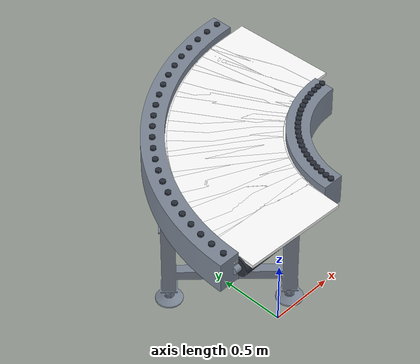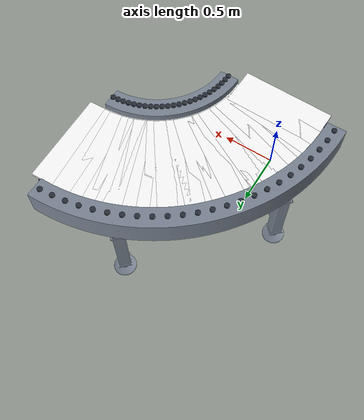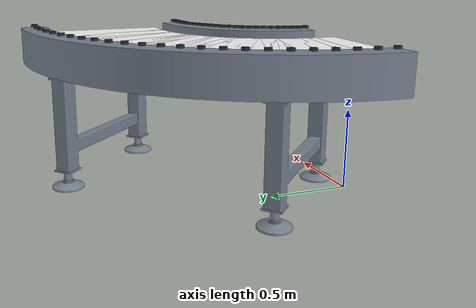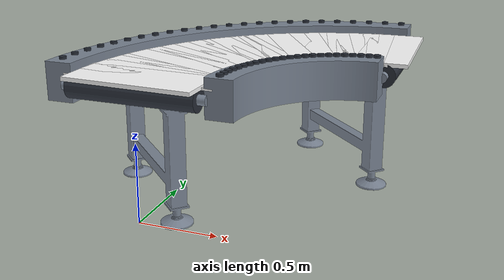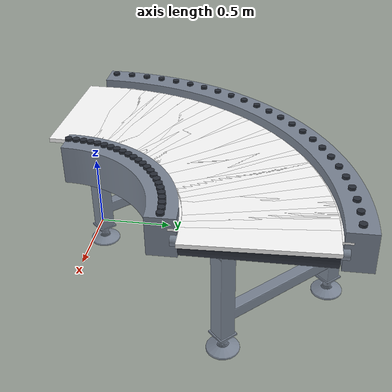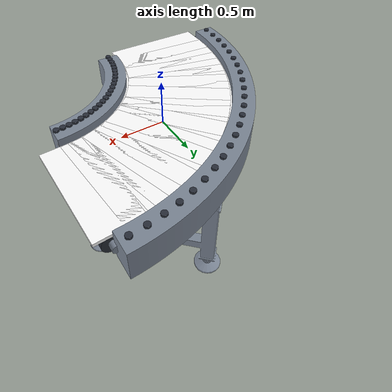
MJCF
<mujoco model="conveyor_curve_right">
  <!-- Generated by generate.mjs. Edit the generator rather than this file. -->
  <compiler angle="radian" meshdir="meshes" texturedir="textures"/>
  <option timestep="0.002"/>

  <asset>
    <material name="conveyor_frame_mat" rgba="0.48 0.52 0.58 1" metallic="0.72" roughness="0.28"/>
    <material name="conveyor_hardware_mat" rgba="0.16 0.18 0.22 1" metallic="0.82" roughness="0.24"/>
    <texture name="belt_color" type="2d" file="rubber-color.png"/>
    <texture name="belt_normal" type="2d" file="rubber-normal.png"/>
    <texture name="belt_roughness" type="2d" file="rubber-roughness.png"/>
    <material name="conveyor_belt_mat" rgba="1 1 1 1" metallic="0" roughness="1">
      <layer role="rgb" texture="belt_color"/>
      <layer role="normal" texture="belt_normal"/>
      <layer role="roughness" texture="belt_roughness"/>
    </material>
    <mesh name="conveyor_curve_inner_rail_visual" file="curve-right-inner-rail.obj" inertia="shell"/>
    <mesh name="conveyor_curve_outer_rail_visual" file="curve-right-outer-rail.obj" inertia="shell"/>
    <mesh name="conveyor_curve_belt_underlay_visual" file="curve-right-belt-underlay.obj" inertia="shell"/>
    <mesh name="conveyor_curve_belt_tile" file="belt-curve-tile.obj" inertia="shell"/>
    <mesh name="conveyor_curve_belt_end_tile" file="belt-curve-end-tile.obj" inertia="shell"/>
    <mesh name="conveyor_curve_support_visual"
          file="visual_3.obj" inertia="shell"/>
  </asset>

  <worldbody>
    <body name="conveyor_curve_right" pos="0 0 0">
      <!-- The incoming connection is centered at the origin and points along local +Y. -->
      <geom name="conveyor_curve_belt_underlay_visual" type="mesh" mesh="conveyor_curve_belt_underlay_visual"
            material="conveyor_belt_mat" group="1" contype="0" conaffinity="0" mass="0"/>
      <geom name="conveyor_curve_inner_rail_visual" type="mesh" mesh="conveyor_curve_inner_rail_visual"
            material="conveyor_frame_mat" group="1" contype="0" conaffinity="0" mass="0"/>
      <geom name="conveyor_curve_outer_rail_visual" type="mesh" mesh="conveyor_curve_outer_rail_visual"
            material="conveyor_frame_mat" group="1" contype="0" conaffinity="0" mass="0"/>
      <!-- Connection frames use local +Y as belt travel for drag-to-attach placement. -->
      <site name="attachment_site" pos="0 0 0.88" xyaxes="1 0 0 0 1 0" size="0.035" group="4"/>
      <site name="attachment_site_outlet" pos="1.25 1.25 0.88"
            xyaxes="0 -1 0 1 0 0" size="0.035" group="4"/>

      <!-- Driven roller and end caps make each curve interface read as a real conveyor transition. -->
      <geom name="conveyor_curve_inlet_roller" type="cylinder" fromto="-0.405 0 0.81 0.405 0 0.81" size="0.075"
            material="conveyor_hardware_mat" group="1" contype="0" conaffinity="0" mass="0"/>
      <geom name="conveyor_curve_inlet_roller_caps" type="cylinder" fromto="-0.455 0 0.81 0.455 0 0.81" size="0.031"
            material="conveyor_frame_mat" group="1" contype="0" conaffinity="0" mass="0"/>
      <!-- Driven roller and end caps make each curve interface read as a real conveyor transition. -->
      <geom name="conveyor_curve_outlet_roller" type="cylinder" fromto="1.25 1.6370036 0.81 1.25 0.8270036 0.81" size="0.075"
            material="conveyor_hardware_mat" group="1" contype="0" conaffinity="0" mass="0"/>
      <geom name="conveyor_curve_outlet_roller_caps" type="cylinder" fromto="1.25 1.6870036 0.81 1.25 0.7770036 0.81" size="0.031"
            material="conveyor_frame_mat" group="1" contype="0" conaffinity="0" mass="0"/>

      <!-- Reuse the straight conveyor's finished, adjustable-leg support assembly. -->
      <geom name="conveyor_curve_support_visual" type="mesh" mesh="conveyor_curve_support_visual"
            pos="0.3788419 0.8711581 0" quat="0.923879533 0 0 -0.382683432" material="conveyor_frame_mat"
            group="1" contype="0" conaffinity="0" mass="0"/>

      <!-- Fasteners along both guard rails give the curve the same manufactured detail as the straight modules. -->
      <geom name="conveyor_curve_inner_fastener_0" type="cylinder" pos="0.523385647 0.023786891 0.955" size="0.022 0.008"
            material="conveyor_hardware_mat" group="1" contype="0" conaffinity="0" mass="0"/>
      <geom name="conveyor_curve_outer_fastener_0" type="cylinder" pos="-0.486073587 0.056833165 0.955" size="0.022 0.008"
            material="conveyor_hardware_mat" group="1" contype="0" conaffinity="0" mass="0"/>
      <geom name="conveyor_curve_inner_fastener_1" type="cylinder" pos="0.526497121 0.071258814 0.955" size="0.022 0.008"
            material="conveyor_hardware_mat" group="1" contype="0" conaffinity="0" mass="0"/>
      <geom name="conveyor_curve_outer_fastener_1" type="cylinder" pos="-0.478639453 0.170256126 0.955" size="0.022 0.008"
            material="conveyor_hardware_mat" group="1" contype="0" conaffinity="0" mass="0"/>
      <geom name="conveyor_curve_inner_fastener_2" type="cylinder" pos="0.532706746 0.118425596 0.955" size="0.022 0.008"
            material="conveyor_hardware_mat" group="1" contype="0" conaffinity="0" mass="0"/>
      <geom name="conveyor_curve_outer_fastener_2" type="cylinder" pos="-0.46380302 0.282950024 0.955" size="0.022 0.008"
            material="conveyor_hardware_mat" group="1" contype="0" conaffinity="0" mass="0"/>
      <geom name="conveyor_curve_inner_fastener_3" type="cylinder" pos="0.54198793 0.165085261 0.955" size="0.022 0.008"
            material="conveyor_hardware_mat" group="1" contype="0" conaffinity="0" mass="0"/>
      <geom name="conveyor_curve_outer_fastener_3" type="cylinder" pos="-0.441627819 0.394432286 0.955" size="0.022 0.008"
            material="conveyor_hardware_mat" group="1" contype="0" conaffinity="0" mass="0"/>
      <geom name="conveyor_curve_inner_fastener_4" type="cylinder" pos="0.554300931 0.211038005 0.955" size="0.022 0.008"
            material="conveyor_hardware_mat" group="1" contype="0" conaffinity="0" mass="0"/>
      <geom name="conveyor_curve_outer_fastener_4" type="cylinder" pos="-0.412208808 0.504225529 0.955" size="0.022 0.008"
            material="conveyor_hardware_mat" group="1" contype="0" conaffinity="0" mass="0"/>
      <geom name="conveyor_curve_inner_fastener_5" type="cylinder" pos="0.569593022 0.256087053 0.955" size="0.022 0.008"
            material="conveyor_hardware_mat" group="1" contype="0" conaffinity="0" mass="0"/>
      <geom name="conveyor_curve_outer_fastener_5" type="cylinder" pos="-0.375671964 0.611859601 0.955" size="0.022 0.008"
            material="conveyor_hardware_mat" group="1" contype="0" conaffinity="0" mass="0"/>
      <geom name="conveyor_curve_inner_fastener_6" type="cylinder" pos="0.58779872 0.300039496 0.955" size="0.022 0.008"
            material="conveyor_hardware_mat" group="1" contype="0" conaffinity="0" mass="0"/>
      <geom name="conveyor_curve_outer_fastener_6" type="cylinder" pos="-0.332173743 0.716873597 0.955" size="0.022 0.008"
            material="conveyor_hardware_mat" group="1" contype="0" conaffinity="0" mass="0"/>
      <geom name="conveyor_curve_inner_fastener_7" type="cylinder" pos="0.608840066 0.342707125 0.955" size="0.022 0.008"
            material="conveyor_hardware_mat" group="1" contype="0" conaffinity="0" mass="0"/>
      <geom name="conveyor_curve_outer_fastener_7" type="cylinder" pos="-0.281900411 0.818817829 0.955" size="0.022 0.008"
            material="conveyor_hardware_mat" group="1" contype="0" conaffinity="0" mass="0"/>
      <geom name="conveyor_curve_inner_fastener_8" type="cylinder" pos="0.632626957 0.383907228 0.955" size="0.022 0.008"
            material="conveyor_hardware_mat" group="1" contype="0" conaffinity="0" mass="0"/>
      <geom name="conveyor_curve_outer_fastener_8" type="cylinder" pos="-0.225067246 0.917255758 0.955" size="0.022 0.008"
            material="conveyor_hardware_mat" group="1" contype="0" conaffinity="0" mass="0"/>
      <geom name="conveyor_curve_inner_fastener_9" type="cylinder" pos="0.659057534 0.423463383 0.955" size="0.022 0.008"
            material="conveyor_hardware_mat" group="1" contype="0" conaffinity="0" mass="0"/>
      <geom name="conveyor_curve_outer_fastener_9" type="cylinder" pos="-0.161917617 1.011765856 0.955" size="0.022 0.008"
            material="conveyor_hardware_mat" group="1" contype="0" conaffinity="0" mass="0"/>
      <geom name="conveyor_curve_inner_fastener_10" type="cylinder" pos="0.688018618 0.461206201 0.955" size="0.022 0.008"
            material="conveyor_hardware_mat" group="1" contype="0" conaffinity="0" mass="0"/>
      <geom name="conveyor_curve_outer_fastener_10" type="cylinder" pos="-0.09272194 1.101943418 0.955" size="0.022 0.008"
            material="conveyor_hardware_mat" group="1" contype="0" conaffinity="0" mass="0"/>
      <geom name="conveyor_curve_inner_fastener_11" type="cylinder" pos="0.719386192 0.496974065 0.955" size="0.022 0.008"
            material="conveyor_hardware_mat" group="1" contype="0" conaffinity="0" mass="0"/>
      <geom name="conveyor_curve_outer_fastener_11" type="cylinder" pos="-0.017776522 1.18740229 0.955" size="0.022 0.008"
            material="conveyor_hardware_mat" group="1" contype="0" conaffinity="0" mass="0"/>
      <geom name="conveyor_curve_inner_fastener_12" type="cylinder" pos="0.753025935 0.530613808 0.955" size="0.022 0.008"
            material="conveyor_hardware_mat" group="1" contype="0" conaffinity="0" mass="0"/>
      <geom name="conveyor_curve_outer_fastener_12" type="cylinder" pos="0.06259771 1.267776522 0.955" size="0.022 0.008"
            material="conveyor_hardware_mat" group="1" contype="0" conaffinity="0" mass="0"/>
      <geom name="conveyor_curve_inner_fastener_13" type="cylinder" pos="0.788793799 0.561981382 0.955" size="0.022 0.008"
            material="conveyor_hardware_mat" group="1" contype="0" conaffinity="0" mass="0"/>
      <geom name="conveyor_curve_outer_fastener_13" type="cylinder" pos="0.148056582 1.34272194 0.955" size="0.022 0.008"
            material="conveyor_hardware_mat" group="1" contype="0" conaffinity="0" mass="0"/>
      <geom name="conveyor_curve_inner_fastener_14" type="cylinder" pos="0.826536617 0.590942466 0.955" size="0.022 0.008"
            material="conveyor_hardware_mat" group="1" contype="0" conaffinity="0" mass="0"/>
      <geom name="conveyor_curve_outer_fastener_14" type="cylinder" pos="0.238234144 1.411917617 0.955" size="0.022 0.008"
            material="conveyor_hardware_mat" group="1" contype="0" conaffinity="0" mass="0"/>
      <geom name="conveyor_curve_inner_fastener_15" type="cylinder" pos="0.866092772 0.617373043 0.955" size="0.022 0.008"
            material="conveyor_hardware_mat" group="1" contype="0" conaffinity="0" mass="0"/>
      <geom name="conveyor_curve_outer_fastener_15" type="cylinder" pos="0.332744242 1.475067246 0.955" size="0.022 0.008"
            material="conveyor_hardware_mat" group="1" contype="0" conaffinity="0" mass="0"/>
      <geom name="conveyor_curve_inner_fastener_16" type="cylinder" pos="0.907292875 0.641159934 0.955" size="0.022 0.008"
            material="conveyor_hardware_mat" group="1" contype="0" conaffinity="0" mass="0"/>
      <geom name="conveyor_curve_outer_fastener_16" type="cylinder" pos="0.431182171 1.531900411 0.955" size="0.022 0.008"
            material="conveyor_hardware_mat" group="1" contype="0" conaffinity="0" mass="0"/>
      <geom name="conveyor_curve_inner_fastener_17" type="cylinder" pos="0.949960504 0.66220128 0.955" size="0.022 0.008"
            material="conveyor_hardware_mat" group="1" contype="0" conaffinity="0" mass="0"/>
      <geom name="conveyor_curve_outer_fastener_17" type="cylinder" pos="0.533126403 1.582173743 0.955" size="0.022 0.008"
            material="conveyor_hardware_mat" group="1" contype="0" conaffinity="0" mass="0"/>
      <geom name="conveyor_curve_inner_fastener_18" type="cylinder" pos="0.993912947 0.680406978 0.955" size="0.022 0.008"
            material="conveyor_hardware_mat" group="1" contype="0" conaffinity="0" mass="0"/>
      <geom name="conveyor_curve_outer_fastener_18" type="cylinder" pos="0.638140399 1.625671964 0.955" size="0.022 0.008"
            material="conveyor_hardware_mat" group="1" contype="0" conaffinity="0" mass="0"/>
      <geom name="conveyor_curve_inner_fastener_19" type="cylinder" pos="1.038961995 0.695699069 0.955" size="0.022 0.008"
            material="conveyor_hardware_mat" group="1" contype="0" conaffinity="0" mass="0"/>
      <geom name="conveyor_curve_outer_fastener_19" type="cylinder" pos="0.745774471 1.662208808 0.955" size="0.022 0.008"
            material="conveyor_hardware_mat" group="1" contype="0" conaffinity="0" mass="0"/>
      <geom name="conveyor_curve_inner_fastener_20" type="cylinder" pos="1.084914739 0.70801207 0.955" size="0.022 0.008"
            material="conveyor_hardware_mat" group="1" contype="0" conaffinity="0" mass="0"/>
      <geom name="conveyor_curve_outer_fastener_20" type="cylinder" pos="0.855567714 1.691627819 0.955" size="0.022 0.008"
            material="conveyor_hardware_mat" group="1" contype="0" conaffinity="0" mass="0"/>
      <geom name="conveyor_curve_inner_fastener_21" type="cylinder" pos="1.131574404 0.717293254 0.955" size="0.022 0.008"
            material="conveyor_hardware_mat" group="1" contype="0" conaffinity="0" mass="0"/>
      <geom name="conveyor_curve_outer_fastener_21" type="cylinder" pos="0.967049976 1.71380302 0.955" size="0.022 0.008"
            material="conveyor_hardware_mat" group="1" contype="0" conaffinity="0" mass="0"/>
      <geom name="conveyor_curve_inner_fastener_22" type="cylinder" pos="1.178741186 0.723502879 0.955" size="0.022 0.008"
            material="conveyor_hardware_mat" group="1" contype="0" conaffinity="0" mass="0"/>
      <geom name="conveyor_curve_outer_fastener_22" type="cylinder" pos="1.079743874 1.728639453 0.955" size="0.022 0.008"
            material="conveyor_hardware_mat" group="1" contype="0" conaffinity="0" mass="0"/>
      <geom name="conveyor_curve_inner_fastener_23" type="cylinder" pos="1.226213109 0.726614353 0.955" size="0.022 0.008"
            material="conveyor_hardware_mat" group="1" contype="0" conaffinity="0" mass="0"/>
      <geom name="conveyor_curve_outer_fastener_23" type="cylinder" pos="1.193166835 1.736073587 0.955" size="0.022 0.008"
            material="conveyor_hardware_mat" group="1" contype="0" conaffinity="0" mass="0"/>

      <!-- Overlapping tangent boxes approximate stable curved frame and rail collision. -->
      <geom name="conveyor_curve_frame_collision_0" type="box"
            pos="0.01865603 0.040310028 0.35" quat="0.999866138 0 0 -0.016361732"
            size="0.52 0.085235363 0.35" group="3" rgba="0 0 0 0" contype="1" conaffinity="0" density="27.0073"/>
      <geom name="conveyor_curve_inner_rail_collision_0" type="box"
            pos="0.52838297 0.023623296 0.82" quat="0.999866138 0 0 -0.016361732"
            size="0.09 0.085235363 0.12" group="3" rgba="0 0 0 0" contype="1" conaffinity="0" density="27.0073"/>
      <geom name="conveyor_curve_outer_rail_collision_0" type="box"
            pos="-0.491070909 0.05699676 0.82" quat="0.999866138 0 0 -0.016361732"
            size="0.09 0.085235363 0.12" group="3" rgba="0 0 0 0" contype="1" conaffinity="0" density="27.0073"/>
      <geom name="conveyor_curve_frame_collision_1" type="box"
            pos="0.023928834 0.12075747 0.35" quat="0.998795456 0 0 -0.049067674"
            size="0.52 0.085235363 0.35" group="3" rgba="0 0 0 0" contype="1" conaffinity="0" density="27.0073"/>
      <geom name="conveyor_curve_inner_rail_collision_1" type="box"
            pos="0.531473045 0.070768728 0.82" quat="0.998795456 0 0 -0.049067674"
            size="0.09 0.085235363 0.12" group="3" rgba="0 0 0 0" contype="1" conaffinity="0" density="27.0073"/>
      <geom name="conveyor_curve_outer_rail_collision_1" type="box"
            pos="-0.483615377 0.170746211 0.82" quat="0.998795456 0 0 -0.049067674"
            size="0.09 0.085235363 0.12" group="3" rgba="0 0 0 0" contype="1" conaffinity="0" density="27.0073"/>
      <geom name="conveyor_curve_frame_collision_2" type="box"
            pos="0.034451863 0.20068781 0.35" quat="0.996655239 0 0 -0.081721074"
            size="0.52 0.085235363 0.35" group="3" rgba="0 0 0 0" contype="1" conaffinity="0" density="27.0073"/>
      <geom name="conveyor_curve_inner_rail_collision_2" type="box"
            pos="0.537639962 0.117611118 0.82" quat="0.996655239 0 0 -0.081721074"
            size="0.09 0.085235363 0.12" group="3" rgba="0 0 0 0" contype="1" conaffinity="0" density="27.0073"/>
      <geom name="conveyor_curve_outer_rail_collision_2" type="box"
            pos="-0.468736236 0.283764501 0.82" quat="0.996655239 0 0 -0.081721074"
            size="0.09 0.085235363 0.12" group="3" rgba="0 0 0 0" contype="1" conaffinity="0" density="27.0073"/>
      <geom name="conveyor_curve_frame_collision_3" type="box"
            pos="0.050180056 0.279758774 0.35" quat="0.993447779 0 0 -0.114286965"
            size="0.52 0.085235363 0.35" group="3" rgba="0 0 0 0" contype="1" conaffinity="0" density="27.0073"/>
      <geom name="conveyor_curve_inner_rail_collision_3" type="box"
            pos="0.546857315 0.163949879 0.82" quat="0.993447779 0 0 -0.114286965"
            size="0.09 0.085235363 0.12" group="3" rgba="0 0 0 0" contype="1" conaffinity="0" density="27.0073"/>
      <geom name="conveyor_curve_outer_rail_collision_3" type="box"
            pos="-0.446497204 0.395567668 0.82" quat="0.993447779 0 0 -0.114286965"
            size="0.09 0.085235363 0.12" group="3" rgba="0 0 0 0" contype="1" conaffinity="0" density="27.0073"/>
      <geom name="conveyor_curve_frame_collision_4" type="box"
            pos="0.071046061 0.357631767 0.35" quat="0.98917651 0 0 -0.146730474"
            size="0.52 0.085235363 0.35" group="3" rgba="0 0 0 0" contype="1" conaffinity="0" density="27.0073"/>
      <geom name="conveyor_curve_inner_rail_collision_4" type="box"
            pos="0.559085633 0.209586582 0.82" quat="0.98917651 0 0 -0.146730474"
            size="0.09 0.085235363 0.12" group="3" rgba="0 0 0 0" contype="1" conaffinity="0" density="27.0073"/>
      <geom name="conveyor_curve_outer_rail_collision_4" type="box"
            pos="-0.41699351 0.505676953 0.82" quat="0.98917651 0 0 -0.146730474"
            size="0.09 0.085235363 0.12" group="3" rgba="0 0 0 0" contype="1" conaffinity="0" density="27.0073"/>
      <geom name="conveyor_curve_frame_collision_5" type="box"
            pos="0.096960529 0.433973327 0.35" quat="0.983846006 0 0 -0.179016861"
            size="0.52 0.085235363 0.35" group="3" rgba="0 0 0 0" contype="1" conaffinity="0" density="27.0073"/>
      <geom name="conveyor_curve_inner_rail_collision_5" type="box"
            pos="0.574272552 0.254325803 0.82" quat="0.983846006 0 0 -0.179016861"
            size="0.09 0.085235363 0.12" group="3" rgba="0 0 0 0" contype="1" conaffinity="0" density="27.0073"/>
      <geom name="conveyor_curve_outer_rail_collision_5" type="box"
            pos="-0.380351494 0.613620852 0.82" quat="0.983846006 0 0 -0.179016861"
            size="0.09 0.085235363 0.12" group="3" rgba="0 0 0 0" contype="1" conaffinity="0" density="27.0073"/>
      <geom name="conveyor_curve_frame_collision_6" type="box"
            pos="0.127812489 0.508456546 0.35" quat="0.977461975 0 0 -0.211111552"
            size="0.52 0.085235363 0.35" group="3" rgba="0 0 0 0" contype="1" conaffinity="0" density="27.0073"/>
      <geom name="conveyor_curve_inner_rail_collision_6" type="box"
            pos="0.592353039 0.297975961 0.82" quat="0.977461975 0 0 -0.211111552"
            size="0.09 0.085235363 0.12" group="3" rgba="0 0 0 0" contype="1" conaffinity="0" density="27.0073"/>
      <geom name="conveyor_curve_outer_rail_collision_6" type="box"
            pos="-0.336728062 0.718937132 0.82" quat="0.977461975 0 0 -0.211111552"
            size="0.09 0.085235363 0.12" group="3" rgba="0 0 0 0" contype="1" conaffinity="0" density="27.0073"/>
      <geom name="conveyor_curve_frame_collision_7" type="box"
            pos="0.163469827 0.580762477 0.35" quat="0.970031253 0 0 -0.24298018"
            size="0.52 0.085235363 0.35" group="3" rgba="0 0 0 0" contype="1" conaffinity="0" density="27.0073"/>
      <geom name="conveyor_curve_inner_rail_collision_7" type="box"
            pos="0.613249672 0.340350141 0.82" quat="0.970031253 0 0 -0.24298018"
            size="0.09 0.085235363 0.12" group="3" rgba="0 0 0 0" contype="1" conaffinity="0" density="27.0073"/>
      <geom name="conveyor_curve_outer_rail_collision_7" type="box"
            pos="-0.286310017 0.821174813 0.82" quat="0.970031253 0 0 -0.24298018"
            size="0.09 0.085235363 0.12" group="3" rgba="0 0 0 0" contype="1" conaffinity="0" density="27.0073"/>
      <geom name="conveyor_curve_frame_collision_8" type="box"
            pos="0.203779855 0.650581493 0.35" quat="0.961561798 0 0 -0.274588618"
            size="0.52 0.085235363 0.35" group="3" rgba="0 0 0 0" contype="1" conaffinity="0" density="27.0073"/>
      <geom name="conveyor_curve_inner_rail_collision_8" type="box"
            pos="0.636872968 0.381266889 0.82" quat="0.961561798 0 0 -0.274588618"
            size="0.09 0.085235363 0.12" group="3" rgba="0 0 0 0" contype="1" conaffinity="0" density="27.0073"/>
      <geom name="conveyor_curve_outer_rail_collision_8" type="box"
            pos="-0.229313257 0.919896097 0.82" quat="0.961561798 0 0 -0.274588618"
            size="0.09 0.085235363 0.12" group="3" rgba="0 0 0 0" contype="1" conaffinity="0" density="27.0073"/>
      <geom name="conveyor_curve_frame_collision_9" type="box"
            pos="0.248569958 0.717614619 0.35" quat="0.952062678 0 0 -0.30590302"
            size="0.52 0.085235363 0.35" group="3" rgba="0 0 0 0" contype="1" conaffinity="0" density="27.0073"/>
      <geom name="conveyor_curve_inner_rail_collision_9" type="box"
            pos="0.663121767 0.420550994 0.82" quat="0.952062678 0 0 -0.30590302"
            size="0.09 0.085235363 0.12" group="3" rgba="0 0 0 0" contype="1" conaffinity="0" density="27.0073"/>
      <geom name="conveyor_curve_outer_rail_collision_9" type="box"
            pos="-0.165981851 1.014678245 0.82" quat="0.952062678 0 0 -0.30590302"
            size="0.09 0.085235363 0.12" group="3" rgba="0 0 0 0" contype="1" conaffinity="0" density="27.0073"/>
      <geom name="conveyor_curve_frame_collision_10" type="box"
            pos="0.297648339 0.78157481 0.35" quat="0.941544065 0 0 -0.336889853"
            size="0.52 0.085235363 0.35" group="3" rgba="0 0 0 0" contype="1" conaffinity="0" density="27.0073"/>
      <geom name="conveyor_curve_inner_rail_collision_10" type="box"
            pos="0.69188367 0.458034235 0.82" quat="0.941544065 0 0 -0.336889853"
            size="0.09 0.085235363 0.12" group="3" rgba="0 0 0 0" contype="1" conaffinity="0" density="27.0073"/>
      <geom name="conveyor_curve_outer_rail_collision_10" type="box"
            pos="-0.096586993 1.105115385 0.82" quat="0.941544065 0 0 -0.336889853"
            size="0.09 0.085235363 0.12" group="3" rgba="0 0 0 0" contype="1" conaffinity="0" density="27.0073"/>
      <geom name="conveyor_curve_frame_collision_11" type="box"
            pos="0.350804835 0.842188177 0.35" quat="0.930017224 0 0 -0.367515937"
            size="0.52 0.085235363 0.35" group="3" rgba="0 0 0 0" contype="1" conaffinity="0" density="27.0073"/>
      <geom name="conveyor_curve_inner_rail_collision_11" type="box"
            pos="0.723035512 0.493556103 0.82" quat="0.930017224 0 0 -0.367515937"
            size="0.09 0.085235363 0.12" group="3" rgba="0 0 0 0" contype="1" conaffinity="0" density="27.0073"/>
      <geom name="conveyor_curve_outer_rail_collision_11" type="box"
            pos="-0.021425842 1.190820251 0.82" quat="0.930017224 0 0 -0.367515937"
            size="0.09 0.085235363 0.12" group="3" rgba="0 0 0 0" contype="1" conaffinity="0" density="27.0073"/>
      <geom name="conveyor_curve_frame_collision_12" type="box"
            pos="0.407811823 0.899195165 0.35" quat="0.917494496 0 0 -0.397748475"
            size="0.52 0.085235363 0.35" group="3" rgba="0 0 0 0" contype="1" conaffinity="0" density="27.0073"/>
      <geom name="conveyor_curve_inner_rail_collision_12" type="box"
            pos="0.756443897 0.526964488 0.82" quat="0.917494496 0 0 -0.397748475"
            size="0.09 0.085235363 0.12" group="3" rgba="0 0 0 0" contype="1" conaffinity="0" density="27.0073"/>
      <geom name="conveyor_curve_outer_rail_collision_12" type="box"
            pos="0.059179749 1.271425842 0.82" quat="0.917494496 0 0 -0.397748475"
            size="0.09 0.085235363 0.12" group="3" rgba="0 0 0 0" contype="1" conaffinity="0" density="27.0073"/>
      <geom name="conveyor_curve_frame_collision_13" type="box"
            pos="0.46842519 0.952351661 0.35" quat="0.903989293 0 0 -0.427555093"
            size="0.52 0.085235363 0.35" group="3" rgba="0 0 0 0" contype="1" conaffinity="0" density="27.0073"/>
      <geom name="conveyor_curve_inner_rail_collision_13" type="box"
            pos="0.791965765 0.55811633 0.82" quat="0.903989293 0 0 -0.427555093"
            size="0.09 0.085235363 0.12" group="3" rgba="0 0 0 0" contype="1" conaffinity="0" density="27.0073"/>
      <geom name="conveyor_curve_outer_rail_collision_13" type="box"
            pos="0.144884615 1.346586993 0.82" quat="0.903989293 0 0 -0.427555093"
            size="0.09 0.085235363 0.12" group="3" rgba="0 0 0 0" contype="1" conaffinity="0" density="27.0073"/>
      <geom name="conveyor_curve_frame_collision_14" type="box"
            pos="0.532385381 1.001430042 0.35" quat="0.889516075 0 0 -0.456903876"
            size="0.52 0.085235363 0.35" group="3" rgba="0 0 0 0" contype="1" conaffinity="0" density="27.0073"/>
      <geom name="conveyor_curve_inner_rail_collision_14" type="box"
            pos="0.829449006 0.586878233 0.82" quat="0.889516075 0 0 -0.456903876"
            size="0.09 0.085235363 0.12" group="3" rgba="0 0 0 0" contype="1" conaffinity="0" density="27.0073"/>
      <geom name="conveyor_curve_outer_rail_collision_14" type="box"
            pos="0.235321755 1.415981851 0.82" quat="0.889516075 0 0 -0.456903876"
            size="0.09 0.085235363 0.12" group="3" rgba="0 0 0 0" contype="1" conaffinity="0" density="27.0073"/>
      <geom name="conveyor_curve_frame_collision_15" type="box"
            pos="0.599418507 1.046220145 0.35" quat="0.874090342 0 0 -0.485763394"
            size="0.52 0.085235363 0.35" group="3" rgba="0 0 0 0" contype="1" conaffinity="0" density="27.0073"/>
      <geom name="conveyor_curve_inner_rail_collision_15" type="box"
            pos="0.868733111 0.613127032 0.82" quat="0.874090342 0 0 -0.485763394"
            size="0.09 0.085235363 0.12" group="3" rgba="0 0 0 0" contype="1" conaffinity="0" density="27.0073"/>
      <geom name="conveyor_curve_outer_rail_collision_15" type="box"
            pos="0.330103903 1.479313257 0.82" quat="0.874090342 0 0 -0.485763394"
            size="0.09 0.085235363 0.12" group="3" rgba="0 0 0 0" contype="1" conaffinity="0" density="27.0073"/>
      <geom name="conveyor_curve_frame_collision_16" type="box"
            pos="0.669237523 1.086530173 0.35" quat="0.85772861 0 0 -0.514102744"
            size="0.52 0.085235363 0.35" group="3" rgba="0 0 0 0" contype="1" conaffinity="0" density="27.0073"/>
      <geom name="conveyor_curve_inner_rail_collision_16" type="box"
            pos="0.909649859 0.636750328 0.82" quat="0.85772861 0 0 -0.514102744"
            size="0.09 0.085235363 0.12" group="3" rgba="0 0 0 0" contype="1" conaffinity="0" density="27.0073"/>
      <geom name="conveyor_curve_outer_rail_collision_16" type="box"
            pos="0.428825187 1.536310017 0.82" quat="0.85772861 0 0 -0.514102744"
            size="0.09 0.085235363 0.12" group="3" rgba="0 0 0 0" contype="1" conaffinity="0" density="27.0073"/>
      <geom name="conveyor_curve_frame_collision_17" type="box"
            pos="0.741543454 1.122187511 0.35" quat="0.840448401 0 0 -0.541891581"
            size="0.52 0.085235363 0.35" group="3" rgba="0 0 0 0" contype="1" conaffinity="0" density="27.0073"/>
      <geom name="conveyor_curve_inner_rail_collision_17" type="box"
            pos="0.952024039 0.657646961 0.82" quat="0.840448401 0 0 -0.541891581"
            size="0.09 0.085235363 0.12" group="3" rgba="0 0 0 0" contype="1" conaffinity="0" density="27.0073"/>
      <geom name="conveyor_curve_outer_rail_collision_17" type="box"
            pos="0.531062868 1.586728062 0.82" quat="0.840448401 0 0 -0.541891581"
            size="0.09 0.085235363 0.12" group="3" rgba="0 0 0 0" contype="1" conaffinity="0" density="27.0073"/>
      <geom name="conveyor_curve_frame_collision_18" type="box"
            pos="0.816026673 1.153039471 0.35" quat="0.822268219 0 0 -0.569100146"
            size="0.52 0.085235363 0.35" group="3" rgba="0 0 0 0" contype="1" conaffinity="0" density="27.0073"/>
      <geom name="conveyor_curve_inner_rail_collision_18" type="box"
            pos="0.995674197 0.675727448 0.82" quat="0.822268219 0 0 -0.569100146"
            size="0.09 0.085235363 0.12" group="3" rgba="0 0 0 0" contype="1" conaffinity="0" density="27.0073"/>
      <geom name="conveyor_curve_outer_rail_collision_18" type="box"
            pos="0.636379148 1.630351494 0.82" quat="0.822268219 0 0 -0.569100146"
            size="0.09 0.085235363 0.12" group="3" rgba="0 0 0 0" contype="1" conaffinity="0" density="27.0073"/>
      <geom name="conveyor_curve_frame_collision_19" type="box"
            pos="0.892368233 1.178953939 0.35" quat="0.803207531 0 0 -0.595699304"
            size="0.52 0.085235363 0.35" group="3" rgba="0 0 0 0" contype="1" conaffinity="0" density="27.0073"/>
      <geom name="conveyor_curve_inner_rail_collision_19" type="box"
            pos="1.040413418 0.690914367 0.82" quat="0.803207531 0 0 -0.595699304"
            size="0.09 0.085235363 0.12" group="3" rgba="0 0 0 0" contype="1" conaffinity="0" density="27.0073"/>
      <geom name="conveyor_curve_outer_rail_collision_19" type="box"
            pos="0.744323047 1.66699351 0.82" quat="0.803207531 0 0 -0.595699304"
            size="0.09 0.085235363 0.12" group="3" rgba="0 0 0 0" contype="1" conaffinity="0" density="27.0073"/>
      <geom name="conveyor_curve_frame_collision_20" type="box"
            pos="0.970241226 1.199819944 0.35" quat="0.783286749 0 0 -0.621660573"
            size="0.52 0.085235363 0.35" group="3" rgba="0 0 0 0" contype="1" conaffinity="0" density="27.0073"/>
      <geom name="conveyor_curve_inner_rail_collision_20" type="box"
            pos="1.086050121 0.703142685 0.82" quat="0.783286749 0 0 -0.621660573"
            size="0.09 0.085235363 0.12" group="3" rgba="0 0 0 0" contype="1" conaffinity="0" density="27.0073"/>
      <geom name="conveyor_curve_outer_rail_collision_20" type="box"
            pos="0.854432332 1.696497204 0.82" quat="0.783286749 0 0 -0.621660573"
            size="0.09 0.085235363 0.12" group="3" rgba="0 0 0 0" contype="1" conaffinity="0" density="27.0073"/>
      <geom name="conveyor_curve_frame_collision_21" type="box"
            pos="1.04931219 1.215548137 0.35" quat="0.762527204 0 0 -0.646956153"
            size="0.52 0.085235363 0.35" group="3" rgba="0 0 0 0" contype="1" conaffinity="0" density="27.0073"/>
      <geom name="conveyor_curve_inner_rail_collision_21" type="box"
            pos="1.132388882 0.712360038 0.82" quat="0.762527204 0 0 -0.646956153"
            size="0.09 0.085235363 0.12" group="3" rgba="0 0 0 0" contype="1" conaffinity="0" density="27.0073"/>
      <geom name="conveyor_curve_outer_rail_collision_21" type="box"
            pos="0.966235499 1.718736236 0.82" quat="0.762527204 0 0 -0.646956153"
            size="0.09 0.085235363 0.12" group="3" rgba="0 0 0 0" contype="1" conaffinity="0" density="27.0073"/>
      <geom name="conveyor_curve_frame_collision_22" type="box"
            pos="1.12924253 1.226071166 0.35" quat="0.740951125 0 0 -0.671558955"
            size="0.52 0.085235363 0.35" group="3" rgba="0 0 0 0" contype="1" conaffinity="0" density="27.0073"/>
      <geom name="conveyor_curve_inner_rail_collision_22" type="box"
            pos="1.179231272 0.718526955 0.82" quat="0.740951125 0 0 -0.671558955"
            size="0.09 0.085235363 0.12" group="3" rgba="0 0 0 0" contype="1" conaffinity="0" density="27.0073"/>
      <geom name="conveyor_curve_outer_rail_collision_22" type="box"
            pos="1.079253789 1.733615377 0.82" quat="0.740951125 0 0 -0.671558955"
            size="0.09 0.085235363 0.12" group="3" rgba="0 0 0 0" contype="1" conaffinity="0" density="27.0073"/>
      <geom name="conveyor_curve_frame_collision_23" type="box"
            pos="1.209689972 1.23134397 0.35" quat="0.718581618 0 0 -0.695442635"
            size="0.52 0.085235363 0.35" group="3" rgba="0 0 0 0" contype="1" conaffinity="0" density="27.0073"/>
      <geom name="conveyor_curve_inner_rail_collision_23" type="box"
            pos="1.226376704 0.72161703 0.82" quat="0.718581618 0 0 -0.695442635"
            size="0.09 0.085235363 0.12" group="3" rgba="0 0 0 0" contype="1" conaffinity="0" density="27.0073"/>
      <geom name="conveyor_curve_outer_rail_collision_23" type="box"
            pos="1.19300324 1.741070909 0.82" quat="0.718581618 0 0 -0.695442635"
            size="0.09 0.085235363 0.12" group="3" rgba="0 0 0 0" contype="1" conaffinity="0" density="27.0073"/>

      <!-- Tangent-aligned moving contact tiles steer objects continuously through the turn. -->
      <body name="conveyor_belt_segment_0" pos="0.01865603 0.040310028 0.88" quat="0.999866138 0 0 -0.016361732">
        <joint name="conveyor_belt_segment_0_slide" type="slide" axis="0 1 0"
               range="-0.05 0.05" limited="false" damping="0"/>
        <geom name="conveyor_belt_segment_0_contact" type="box"
              size="0.39 0.169211827 0.0125" group="3" contype="1" conaffinity="2"
              rgba="0 0 0 0" condim="6" friction="1.8 0.08 0.02"
              solimp="0.9 0.98 0.0001" solref="0.002 1" mass="0.000540146"/>
        <!-- The visible tread shares this moving MuJoCo body with its contact tile. -->
        <geom name="conveyor_belt_segment_0_visual" type="mesh" mesh="conveyor_curve_belt_end_tile"
              material="conveyor_belt_mat" group="1" contype="0" conaffinity="0" mass="0"/>
      </body>
      <body name="conveyor_belt_segment_1" pos="0.023928834 0.12075747 0.88" quat="0.998795456 0 0 -0.049067674">
        <joint name="conveyor_belt_segment_1_slide" type="slide" axis="0 1 0"
               range="-0.05 0.05" limited="false" damping="0"/>
        <geom name="conveyor_belt_segment_1_contact" type="box"
              size="0.39 0.079211827 0.0125" group="3" contype="1" conaffinity="2"
              rgba="0 0 0 0" condim="6" friction="1.8 0.08 0.02"
              solimp="0.9 0.98 0.0001" solref="0.002 1" mass="0.000540146"/>
        <!-- The visible tread shares this moving MuJoCo body with its contact tile. -->
        <geom name="conveyor_belt_segment_1_visual" type="mesh" mesh="conveyor_curve_belt_tile"
              material="conveyor_belt_mat" group="1" contype="0" conaffinity="0" mass="0"/>
      </body>
      <body name="conveyor_belt_segment_2" pos="0.034451863 0.20068781 0.88" quat="0.996655239 0 0 -0.081721074">
        <joint name="conveyor_belt_segment_2_slide" type="slide" axis="0 1 0"
               range="-0.05 0.05" limited="false" damping="0"/>
        <geom name="conveyor_belt_segment_2_contact" type="box"
              size="0.39 0.079211827 0.0125" group="3" contype="1" conaffinity="2"
              rgba="0 0 0 0" condim="6" friction="1.8 0.08 0.02"
              solimp="0.9 0.98 0.0001" solref="0.002 1" mass="0.000540146"/>
        <!-- The visible tread shares this moving MuJoCo body with its contact tile. -->
        <geom name="conveyor_belt_segment_2_visual" type="mesh" mesh="conveyor_curve_belt_tile"
              material="conveyor_belt_mat" group="1" contype="0" conaffinity="0" mass="0"/>
      </body>
      <body name="conveyor_belt_segment_3" pos="0.050180056 0.279758774 0.88" quat="0.993447779 0 0 -0.114286965">
        <joint name="conveyor_belt_segment_3_slide" type="slide" axis="0 1 0"
               range="-0.05 0.05" limited="false" damping="0"/>
        <geom name="conveyor_belt_segment_3_contact" type="box"
              size="0.39 0.079211827 0.0125" group="3" contype="1" conaffinity="2"
              rgba="0 0 0 0" condim="6" friction="1.8 0.08 0.02"
              solimp="0.9 0.98 0.0001" solref="0.002 1" mass="0.000540146"/>
        <!-- The visible tread shares this moving MuJoCo body with its contact tile. -->
        <geom name="conveyor_belt_segment_3_visual" type="mesh" mesh="conveyor_curve_belt_tile"
              material="conveyor_belt_mat" group="1" contype="0" conaffinity="0" mass="0"/>
      </body>
      <body name="conveyor_belt_segment_4" pos="0.071046061 0.357631767 0.88" quat="0.98917651 0 0 -0.146730474">
        <joint name="conveyor_belt_segment_4_slide" type="slide" axis="0 1 0"
               range="-0.05 0.05" limited="false" damping="0"/>
        <geom name="conveyor_belt_segment_4_contact" type="box"
              size="0.39 0.079211827 0.0125" group="3" contype="1" conaffinity="2"
              rgba="0 0 0 0" condim="6" friction="1.8 0.08 0.02"
              solimp="0.9 0.98 0.0001" solref="0.002 1" mass="0.000540146"/>
        <!-- The visible tread shares this moving MuJoCo body with its contact tile. -->
        <geom name="conveyor_belt_segment_4_visual" type="mesh" mesh="conveyor_curve_belt_tile"
              material="conveyor_belt_mat" group="1" contype="0" conaffinity="0" mass="0"/>
      </body>
      <body name="conveyor_belt_segment_5" pos="0.096960529 0.433973327 0.88" quat="0.983846006 0 0 -0.179016861">
        <joint name="conveyor_belt_segment_5_slide" type="slide" axis="0 1 0"
               range="-0.05 0.05" limited="false" damping="0"/>
        <geom name="conveyor_belt_segment_5_contact" type="box"
              size="0.39 0.079211827 0.0125" group="3" contype="1" conaffinity="2"
              rgba="0 0 0 0" condim="6" friction="1.8 0.08 0.02"
              solimp="0.9 0.98 0.0001" solref="0.002 1" mass="0.000540146"/>
        <!-- The visible tread shares this moving MuJoCo body with its contact tile. -->
        <geom name="conveyor_belt_segment_5_visual" type="mesh" mesh="conveyor_curve_belt_tile"
              material="conveyor_belt_mat" group="1" contype="0" conaffinity="0" mass="0"/>
      </body>
      <body name="conveyor_belt_segment_6" pos="0.127812489 0.508456546 0.88" quat="0.977461975 0 0 -0.211111552">
        <joint name="conveyor_belt_segment_6_slide" type="slide" axis="0 1 0"
               range="-0.05 0.05" limited="false" damping="0"/>
        <geom name="conveyor_belt_segment_6_contact" type="box"
              size="0.39 0.079211827 0.0125" group="3" contype="1" conaffinity="2"
              rgba="0 0 0 0" condim="6" friction="1.8 0.08 0.02"
              solimp="0.9 0.98 0.0001" solref="0.002 1" mass="0.000540146"/>
        <!-- The visible tread shares this moving MuJoCo body with its contact tile. -->
        <geom name="conveyor_belt_segment_6_visual" type="mesh" mesh="conveyor_curve_belt_tile"
              material="conveyor_belt_mat" group="1" contype="0" conaffinity="0" mass="0"/>
      </body>
      <body name="conveyor_belt_segment_7" pos="0.163469827 0.580762477 0.88" quat="0.970031253 0 0 -0.24298018">
        <joint name="conveyor_belt_segment_7_slide" type="slide" axis="0 1 0"
               range="-0.05 0.05" limited="false" damping="0"/>
        <geom name="conveyor_belt_segment_7_contact" type="box"
              size="0.39 0.079211827 0.0125" group="3" contype="1" conaffinity="2"
              rgba="0 0 0 0" condim="6" friction="1.8 0.08 0.02"
              solimp="0.9 0.98 0.0001" solref="0.002 1" mass="0.000540146"/>
        <!-- The visible tread shares this moving MuJoCo body with its contact tile. -->
        <geom name="conveyor_belt_segment_7_visual" type="mesh" mesh="conveyor_curve_belt_tile"
              material="conveyor_belt_mat" group="1" contype="0" conaffinity="0" mass="0"/>
      </body>
      <body name="conveyor_belt_segment_8" pos="0.203779855 0.650581493 0.88" quat="0.961561798 0 0 -0.274588618">
        <joint name="conveyor_belt_segment_8_slide" type="slide" axis="0 1 0"
               range="-0.05 0.05" limited="false" damping="0"/>
        <geom name="conveyor_belt_segment_8_contact" type="box"
              size="0.39 0.079211827 0.0125" group="3" contype="1" conaffinity="2"
              rgba="0 0 0 0" condim="6" friction="1.8 0.08 0.02"
              solimp="0.9 0.98 0.0001" solref="0.002 1" mass="0.000540146"/>
        <!-- The visible tread shares this moving MuJoCo body with its contact tile. -->
        <geom name="conveyor_belt_segment_8_visual" type="mesh" mesh="conveyor_curve_belt_tile"
              material="conveyor_belt_mat" group="1" contype="0" conaffinity="0" mass="0"/>
      </body>
      <body name="conveyor_belt_segment_9" pos="0.248569958 0.717614619 0.88" quat="0.952062678 0 0 -0.30590302">
        <joint name="conveyor_belt_segment_9_slide" type="slide" axis="0 1 0"
               range="-0.05 0.05" limited="false" damping="0"/>
        <geom name="conveyor_belt_segment_9_contact" type="box"
              size="0.39 0.079211827 0.0125" group="3" contype="1" conaffinity="2"
              rgba="0 0 0 0" condim="6" friction="1.8 0.08 0.02"
              solimp="0.9 0.98 0.0001" solref="0.002 1" mass="0.000540146"/>
        <!-- The visible tread shares this moving MuJoCo body with its contact tile. -->
        <geom name="conveyor_belt_segment_9_visual" type="mesh" mesh="conveyor_curve_belt_tile"
              material="conveyor_belt_mat" group="1" contype="0" conaffinity="0" mass="0"/>
      </body>
      <body name="conveyor_belt_segment_10" pos="0.297648339 0.78157481 0.88" quat="0.941544065 0 0 -0.336889853">
        <joint name="conveyor_belt_segment_10_slide" type="slide" axis="0 1 0"
               range="-0.05 0.05" limited="false" damping="0"/>
        <geom name="conveyor_belt_segment_10_contact" type="box"
              size="0.39 0.079211827 0.0125" group="3" contype="1" conaffinity="2"
              rgba="0 0 0 0" condim="6" friction="1.8 0.08 0.02"
              solimp="0.9 0.98 0.0001" solref="0.002 1" mass="0.000540146"/>
        <!-- The visible tread shares this moving MuJoCo body with its contact tile. -->
        <geom name="conveyor_belt_segment_10_visual" type="mesh" mesh="conveyor_curve_belt_tile"
              material="conveyor_belt_mat" group="1" contype="0" conaffinity="0" mass="0"/>
      </body>
      <body name="conveyor_belt_segment_11" pos="0.350804835 0.842188177 0.88" quat="0.930017224 0 0 -0.367515937">
        <joint name="conveyor_belt_segment_11_slide" type="slide" axis="0 1 0"
               range="-0.05 0.05" limited="false" damping="0"/>
        <geom name="conveyor_belt_segment_11_contact" type="box"
              size="0.39 0.079211827 0.0125" group="3" contype="1" conaffinity="2"
              rgba="0 0 0 0" condim="6" friction="1.8 0.08 0.02"
              solimp="0.9 0.98 0.0001" solref="0.002 1" mass="0.000540146"/>
        <!-- The visible tread shares this moving MuJoCo body with its contact tile. -->
        <geom name="conveyor_belt_segment_11_visual" type="mesh" mesh="conveyor_curve_belt_tile"
              material="conveyor_belt_mat" group="1" contype="0" conaffinity="0" mass="0"/>
      </body>
      <body name="conveyor_belt_segment_12" pos="0.407811823 0.899195165 0.88" quat="0.917494496 0 0 -0.397748475">
        <joint name="conveyor_belt_segment_12_slide" type="slide" axis="0 1 0"
               range="-0.05 0.05" limited="false" damping="0"/>
        <geom name="conveyor_belt_segment_12_contact" type="box"
              size="0.39 0.079211827 0.0125" group="3" contype="1" conaffinity="2"
              rgba="0 0 0 0" condim="6" friction="1.8 0.08 0.02"
              solimp="0.9 0.98 0.0001" solref="0.002 1" mass="0.000540146"/>
        <!-- The visible tread shares this moving MuJoCo body with its contact tile. -->
        <geom name="conveyor_belt_segment_12_visual" type="mesh" mesh="conveyor_curve_belt_tile"
              material="conveyor_belt_mat" group="1" contype="0" conaffinity="0" mass="0"/>
      </body>
      <body name="conveyor_belt_segment_13" pos="0.46842519 0.952351661 0.88" quat="0.903989293 0 0 -0.427555093">
        <joint name="conveyor_belt_segment_13_slide" type="slide" axis="0 1 0"
               range="-0.05 0.05" limited="false" damping="0"/>
        <geom name="conveyor_belt_segment_13_contact" type="box"
              size="0.39 0.079211827 0.0125" group="3" contype="1" conaffinity="2"
              rgba="0 0 0 0" condim="6" friction="1.8 0.08 0.02"
              solimp="0.9 0.98 0.0001" solref="0.002 1" mass="0.000540146"/>
        <!-- The visible tread shares this moving MuJoCo body with its contact tile. -->
        <geom name="conveyor_belt_segment_13_visual" type="mesh" mesh="conveyor_curve_belt_tile"
              material="conveyor_belt_mat" group="1" contype="0" conaffinity="0" mass="0"/>
      </body>
      <body name="conveyor_belt_segment_14" pos="0.532385381 1.001430042 0.88" quat="0.889516075 0 0 -0.456903876">
        <joint name="conveyor_belt_segment_14_slide" type="slide" axis="0 1 0"
               range="-0.05 0.05" limited="false" damping="0"/>
        <geom name="conveyor_belt_segment_14_contact" type="box"
              size="0.39 0.079211827 0.0125" group="3" contype="1" conaffinity="2"
              rgba="0 0 0 0" condim="6" friction="1.8 0.08 0.02"
              solimp="0.9 0.98 0.0001" solref="0.002 1" mass="0.000540146"/>
        <!-- The visible tread shares this moving MuJoCo body with its contact tile. -->
        <geom name="conveyor_belt_segment_14_visual" type="mesh" mesh="conveyor_curve_belt_tile"
              material="conveyor_belt_mat" group="1" contype="0" conaffinity="0" mass="0"/>
      </body>
      <body name="conveyor_belt_segment_15" pos="0.599418507 1.046220145 0.88" quat="0.874090342 0 0 -0.485763394">
        <joint name="conveyor_belt_segment_15_slide" type="slide" axis="0 1 0"
               range="-0.05 0.05" limited="false" damping="0"/>
        <geom name="conveyor_belt_segment_15_contact" type="box"
              size="0.39 0.079211827 0.0125" group="3" contype="1" conaffinity="2"
              rgba="0 0 0 0" condim="6" friction="1.8 0.08 0.02"
              solimp="0.9 0.98 0.0001" solref="0.002 1" mass="0.000540146"/>
        <!-- The visible tread shares this moving MuJoCo body with its contact tile. -->
        <geom name="conveyor_belt_segment_15_visual" type="mesh" mesh="conveyor_curve_belt_tile"
              material="conveyor_belt_mat" group="1" contype="0" conaffinity="0" mass="0"/>
      </body>
      <body name="conveyor_belt_segment_16" pos="0.669237523 1.086530173 0.88" quat="0.85772861 0 0 -0.514102744">
        <joint name="conveyor_belt_segment_16_slide" type="slide" axis="0 1 0"
               range="-0.05 0.05" limited="false" damping="0"/>
        <geom name="conveyor_belt_segment_16_contact" type="box"
              size="0.39 0.079211827 0.0125" group="3" contype="1" conaffinity="2"
              rgba="0 0 0 0" condim="6" friction="1.8 0.08 0.02"
              solimp="0.9 0.98 0.0001" solref="0.002 1" mass="0.000540146"/>
        <!-- The visible tread shares this moving MuJoCo body with its contact tile. -->
        <geom name="conveyor_belt_segment_16_visual" type="mesh" mesh="conveyor_curve_belt_tile"
              material="conveyor_belt_mat" group="1" contype="0" conaffinity="0" mass="0"/>
      </body>
      <body name="conveyor_belt_segment_17" pos="0.741543454 1.122187511 0.88" quat="0.840448401 0 0 -0.541891581">
        <joint name="conveyor_belt_segment_17_slide" type="slide" axis="0 1 0"
               range="-0.05 0.05" limited="false" damping="0"/>
        <geom name="conveyor_belt_segment_17_contact" type="box"
              size="0.39 0.079211827 0.0125" group="3" contype="1" conaffinity="2"
              rgba="0 0 0 0" condim="6" friction="1.8 0.08 0.02"
              solimp="0.9 0.98 0.0001" solref="0.002 1" mass="0.000540146"/>
        <!-- The visible tread shares this moving MuJoCo body with its contact tile. -->
        <geom name="conveyor_belt_segment_17_visual" type="mesh" mesh="conveyor_curve_belt_tile"
              material="conveyor_belt_mat" group="1" contype="0" conaffinity="0" mass="0"/>
      </body>
      <body name="conveyor_belt_segment_18" pos="0.816026673 1.153039471 0.88" quat="0.822268219 0 0 -0.569100146">
        <joint name="conveyor_belt_segment_18_slide" type="slide" axis="0 1 0"
               range="-0.05 0.05" limited="false" damping="0"/>
        <geom name="conveyor_belt_segment_18_contact" type="box"
              size="0.39 0.079211827 0.0125" group="3" contype="1" conaffinity="2"
              rgba="0 0 0 0" condim="6" friction="1.8 0.08 0.02"
              solimp="0.9 0.98 0.0001" solref="0.002 1" mass="0.000540146"/>
        <!-- The visible tread shares this moving MuJoCo body with its contact tile. -->
        <geom name="conveyor_belt_segment_18_visual" type="mesh" mesh="conveyor_curve_belt_tile"
              material="conveyor_belt_mat" group="1" contype="0" conaffinity="0" mass="0"/>
      </body>
      <body name="conveyor_belt_segment_19" pos="0.892368233 1.178953939 0.88" quat="0.803207531 0 0 -0.595699304">
        <joint name="conveyor_belt_segment_19_slide" type="slide" axis="0 1 0"
               range="-0.05 0.05" limited="false" damping="0"/>
        <geom name="conveyor_belt_segment_19_contact" type="box"
              size="0.39 0.079211827 0.0125" group="3" contype="1" conaffinity="2"
              rgba="0 0 0 0" condim="6" friction="1.8 0.08 0.02"
              solimp="0.9 0.98 0.0001" solref="0.002 1" mass="0.000540146"/>
        <!-- The visible tread shares this moving MuJoCo body with its contact tile. -->
        <geom name="conveyor_belt_segment_19_visual" type="mesh" mesh="conveyor_curve_belt_tile"
              material="conveyor_belt_mat" group="1" contype="0" conaffinity="0" mass="0"/>
      </body>
      <body name="conveyor_belt_segment_20" pos="0.970241226 1.199819944 0.88" quat="0.783286749 0 0 -0.621660573">
        <joint name="conveyor_belt_segment_20_slide" type="slide" axis="0 1 0"
               range="-0.05 0.05" limited="false" damping="0"/>
        <geom name="conveyor_belt_segment_20_contact" type="box"
              size="0.39 0.079211827 0.0125" group="3" contype="1" conaffinity="2"
              rgba="0 0 0 0" condim="6" friction="1.8 0.08 0.02"
              solimp="0.9 0.98 0.0001" solref="0.002 1" mass="0.000540146"/>
        <!-- The visible tread shares this moving MuJoCo body with its contact tile. -->
        <geom name="conveyor_belt_segment_20_visual" type="mesh" mesh="conveyor_curve_belt_tile"
              material="conveyor_belt_mat" group="1" contype="0" conaffinity="0" mass="0"/>
      </body>
      <body name="conveyor_belt_segment_21" pos="1.04931219 1.215548137 0.88" quat="0.762527204 0 0 -0.646956153">
        <joint name="conveyor_belt_segment_21_slide" type="slide" axis="0 1 0"
               range="-0.05 0.05" limited="false" damping="0"/>
        <geom name="conveyor_belt_segment_21_contact" type="box"
              size="0.39 0.079211827 0.0125" group="3" contype="1" conaffinity="2"
              rgba="0 0 0 0" condim="6" friction="1.8 0.08 0.02"
              solimp="0.9 0.98 0.0001" solref="0.002 1" mass="0.000540146"/>
        <!-- The visible tread shares this moving MuJoCo body with its contact tile. -->
        <geom name="conveyor_belt_segment_21_visual" type="mesh" mesh="conveyor_curve_belt_tile"
              material="conveyor_belt_mat" group="1" contype="0" conaffinity="0" mass="0"/>
      </body>
      <body name="conveyor_belt_segment_22" pos="1.12924253 1.226071166 0.88" quat="0.740951125 0 0 -0.671558955">
        <joint name="conveyor_belt_segment_22_slide" type="slide" axis="0 1 0"
               range="-0.05 0.05" limited="false" damping="0"/>
        <geom name="conveyor_belt_segment_22_contact" type="box"
              size="0.39 0.079211827 0.0125" group="3" contype="1" conaffinity="2"
              rgba="0 0 0 0" condim="6" friction="1.8 0.08 0.02"
              solimp="0.9 0.98 0.0001" solref="0.002 1" mass="0.000540146"/>
        <!-- The visible tread shares this moving MuJoCo body with its contact tile. -->
        <geom name="conveyor_belt_segment_22_visual" type="mesh" mesh="conveyor_curve_belt_tile"
              material="conveyor_belt_mat" group="1" contype="0" conaffinity="0" mass="0"/>
      </body>
      <body name="conveyor_belt_segment_23" pos="1.209689972 1.23134397 0.88" quat="0.718581618 0 0 -0.695442635">
        <joint name="conveyor_belt_segment_23_slide" type="slide" axis="0 1 0"
               range="-0.05 0.05" limited="false" damping="0"/>
        <geom name="conveyor_belt_segment_23_contact" type="box"
              size="0.39 0.169211827 0.0125" group="3" contype="1" conaffinity="2"
              rgba="0 0 0 0" condim="6" friction="1.8 0.08 0.02"
              solimp="0.9 0.98 0.0001" solref="0.002 1" mass="0.000540146"/>
        <!-- The visible tread shares this moving MuJoCo body with its contact tile. -->
        <geom name="conveyor_belt_segment_23_visual" type="mesh" mesh="conveyor_curve_belt_end_tile"
              material="conveyor_belt_mat" group="1" contype="0" conaffinity="0" mass="0"/>
      </body>
    </body>
  </worldbody>

  <equality>
    <joint name="belt_eq_0_1" joint1="conveyor_belt_segment_0_slide" joint2="conveyor_belt_segment_1_slide" polycoef="0 1 0 0 0"/>
    <joint name="belt_eq_1_2" joint1="conveyor_belt_segment_1_slide" joint2="conveyor_belt_segment_2_slide" polycoef="0 1 0 0 0"/>
    <joint name="belt_eq_2_3" joint1="conveyor_belt_segment_2_slide" joint2="conveyor_belt_segment_3_slide" polycoef="0 1 0 0 0"/>
    <joint name="belt_eq_3_4" joint1="conveyor_belt_segment_3_slide" joint2="conveyor_belt_segment_4_slide" polycoef="0 1 0 0 0"/>
    <joint name="belt_eq_4_5" joint1="conveyor_belt_segment_4_slide" joint2="conveyor_belt_segment_5_slide" polycoef="0 1 0 0 0"/>
    <joint name="belt_eq_5_6" joint1="conveyor_belt_segment_5_slide" joint2="conveyor_belt_segment_6_slide" polycoef="0 1 0 0 0"/>
    <joint name="belt_eq_6_7" joint1="conveyor_belt_segment_6_slide" joint2="conveyor_belt_segment_7_slide" polycoef="0 1 0 0 0"/>
    <joint name="belt_eq_7_8" joint1="conveyor_belt_segment_7_slide" joint2="conveyor_belt_segment_8_slide" polycoef="0 1 0 0 0"/>
    <joint name="belt_eq_8_9" joint1="conveyor_belt_segment_8_slide" joint2="conveyor_belt_segment_9_slide" polycoef="0 1 0 0 0"/>
    <joint name="belt_eq_9_10" joint1="conveyor_belt_segment_9_slide" joint2="conveyor_belt_segment_10_slide" polycoef="0 1 0 0 0"/>
    <joint name="belt_eq_10_11" joint1="conveyor_belt_segment_10_slide" joint2="conveyor_belt_segment_11_slide" polycoef="0 1 0 0 0"/>
    <joint name="belt_eq_11_12" joint1="conveyor_belt_segment_11_slide" joint2="conveyor_belt_segment_12_slide" polycoef="0 1 0 0 0"/>
    <joint name="belt_eq_12_13" joint1="conveyor_belt_segment_12_slide" joint2="conveyor_belt_segment_13_slide" polycoef="0 1 0 0 0"/>
    <joint name="belt_eq_13_14" joint1="conveyor_belt_segment_13_slide" joint2="conveyor_belt_segment_14_slide" polycoef="0 1 0 0 0"/>
    <joint name="belt_eq_14_15" joint1="conveyor_belt_segment_14_slide" joint2="conveyor_belt_segment_15_slide" polycoef="0 1 0 0 0"/>
    <joint name="belt_eq_15_16" joint1="conveyor_belt_segment_15_slide" joint2="conveyor_belt_segment_16_slide" polycoef="0 1 0 0 0"/>
    <joint name="belt_eq_16_17" joint1="conveyor_belt_segment_16_slide" joint2="conveyor_belt_segment_17_slide" polycoef="0 1 0 0 0"/>
    <joint name="belt_eq_17_18" joint1="conveyor_belt_segment_17_slide" joint2="conveyor_belt_segment_18_slide" polycoef="0 1 0 0 0"/>
    <joint name="belt_eq_18_19" joint1="conveyor_belt_segment_18_slide" joint2="conveyor_belt_segment_19_slide" polycoef="0 1 0 0 0"/>
    <joint name="belt_eq_19_20" joint1="conveyor_belt_segment_19_slide" joint2="conveyor_belt_segment_20_slide" polycoef="0 1 0 0 0"/>
    <joint name="belt_eq_20_21" joint1="conveyor_belt_segment_20_slide" joint2="conveyor_belt_segment_21_slide" polycoef="0 1 0 0 0"/>
    <joint name="belt_eq_21_22" joint1="conveyor_belt_segment_21_slide" joint2="conveyor_belt_segment_22_slide" polycoef="0 1 0 0 0"/>
    <joint name="belt_eq_22_23" joint1="conveyor_belt_segment_22_slide" joint2="conveyor_belt_segment_23_slide" polycoef="0 1 0 0 0"/>
  </equality>

  <actuator>
    <velocity name="conveyor_speed" joint="conveyor_belt_segment_0_slide" ctrlrange="-1.5 1.5" kv="20"/>
  </actuator>
</mujoco>
